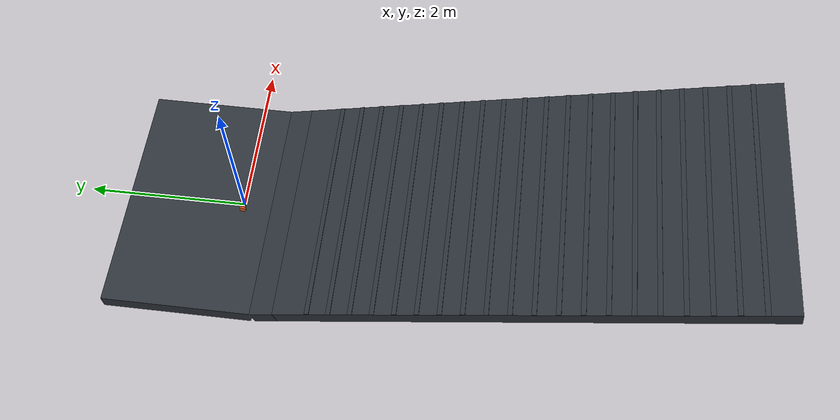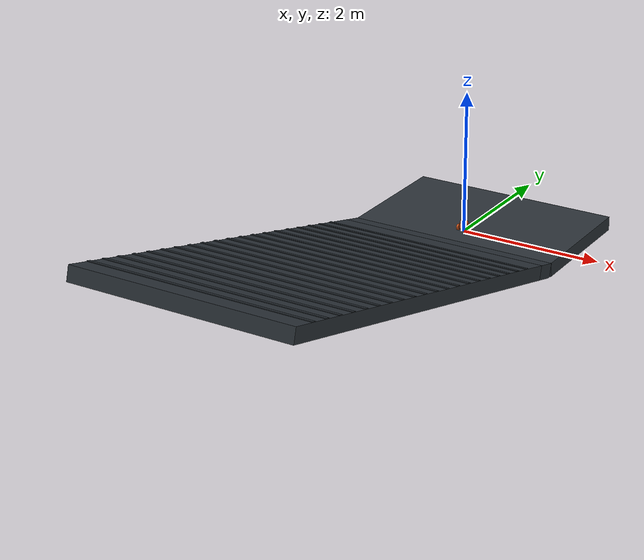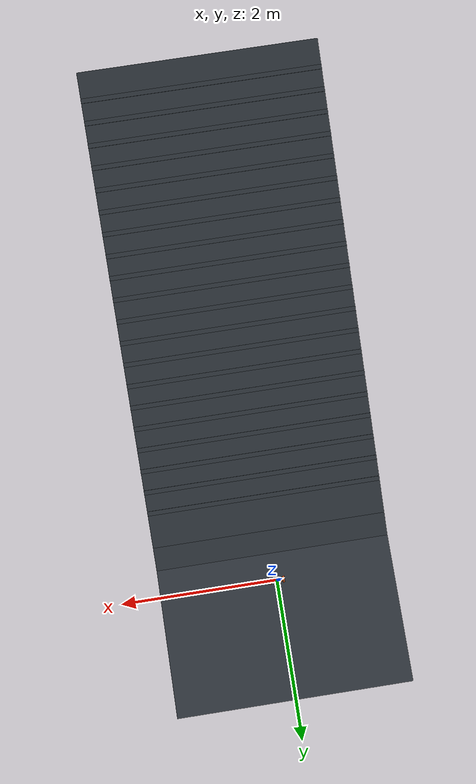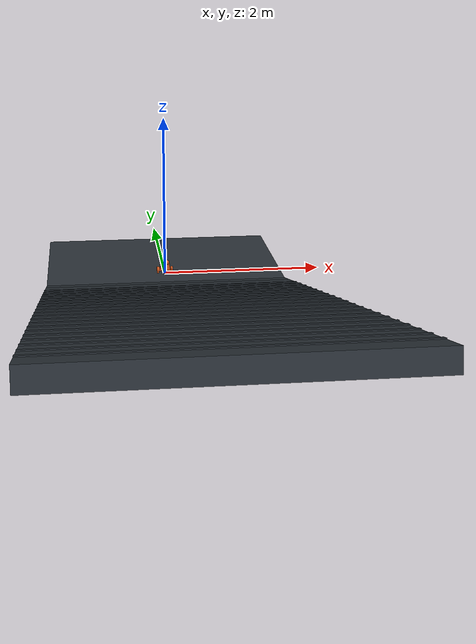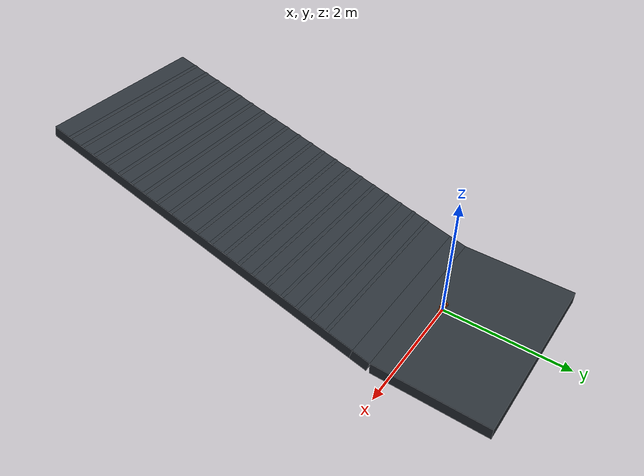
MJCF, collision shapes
<mujoco model="Stage4B rtrain_068_p15p0">
  <compiler angle="radian" meshdir="../../../../assets/upstream_local" />
  <option timestep="0.001" integrator="implicitfast" gravity="0 0 -9.81" />
  <statistic center="0 0 0.05" extent="0.28" />
  <default>
    <default class="visual">
      <geom contype="0" conaffinity="0" group="2" />
    </default>
    <default class="collision">
      <geom group="3" rgba="0.85 0.35 0.12 0.25" solref="0.005 1" solimp="0.9 0.95 0.001" />
    </default>
  </default>
  <asset>
    <texture name="ground_tex" type="2d" builtin="checker" rgb1="0.22 0.25 0.28" rgb2="0.12 0.14 0.16" width="256" height="256" />
    <material name="ground_mat" texture="ground_tex" texrepeat="4 4" reflectance="0.15" />
    <mesh name="main_frame_mesh" file="main_frame.stl" scale="0.001 0.001 0.001" />
    <mesh name="wheel_base_mesh" file="wheel_base.stl" scale="0.001 0.001 0.001" />
    <mesh name="cover_mesh" file="cover.stl" scale="0.001 0.001 0.001" />
    <mesh name="motor_left_mesh" file="motor_left.stl" scale="0.001 0.001 0.001" />
    <mesh name="motor_right_mesh" file="motor_right.stl" scale="0.001 0.001 0.001" />
    <mesh name="mc33926_mesh" file="mc33926.stl" scale="0.001 0.001 0.001" />
    <mesh name="wheel_mesh" file="wheel.stl" scale="0.001 0.001 0.001" />
    <mesh name="adapter_left_mesh" file="adapter_left.stl" scale="0.001 0.001 0.001" />
    <mesh name="adapter_right_mesh" file="adapter_right.stl" scale="0.001 0.001 0.001" />
  </asset>
  <worldbody>
    <light pos="0 -0.5 0.8" dir="0 0.6 -1" diffuse="0.8 0.8 0.8" />
    <geom name="terrain_flat" type="box" pos="0 0.575 -0.1" size="1.5 0.925 0.1" material="ground_mat" friction="0.92615725 0.005 0.0001" condim="3" />
    <geom name="terrain_transition" type="box" pos="0 -0.520770778454 -0.0577697258635" euler="-0.261799387799 0 0" size="1.5 0.15 0.1" material="ground_mat" friction="0.92615725 0.005 0.0001" condim="3" />
    <geom name="terrain_constant_grade" type="box" pos="0 -3.56343713126 0.757510266209" euler="-0.261799387799 0 0" size="1.5 3 0.1" material="ground_mat" friction="0.92615725 0.005 0.0001" condim="3" />
    <geom name="terrain_rough_00" type="box" pos="0 -1.07330453903 0.198368189845" euler="-0.261799387799 0 0" size="1.5 0.0286257252837 0.00440396757438" material="ground_mat" friction="0.92615725 0.005 0.0001" condim="3" />
    <geom name="terrain_rough_01" type="box" pos="0 -1.33782794739 0.269247023492" euler="-0.261799387799 0 0" size="1.5 0.0286257252837 0.00440396757438" material="ground_mat" friction="0.92615725 0.005 0.0001" condim="3" />
    <geom name="terrain_rough_02" type="box" pos="0 -1.60235135574 0.340125857139" euler="-0.261799387799 0 0" size="1.5 0.0286257252837 0.00440396757438" material="ground_mat" friction="0.92615725 0.005 0.0001" condim="3" />
    <geom name="terrain_rough_03" type="box" pos="0 -1.86687476409 0.411004690786" euler="-0.261799387799 0 0" size="1.5 0.0286257252837 0.00440396757438" material="ground_mat" friction="0.92615725 0.005 0.0001" condim="3" />
    <geom name="terrain_rough_04" type="box" pos="0 -2.13139817244 0.481883524432" euler="-0.261799387799 0 0" size="1.5 0.0286257252837 0.00440396757438" material="ground_mat" friction="0.92615725 0.005 0.0001" condim="3" />
    <geom name="terrain_rough_05" type="box" pos="0 -2.39592158079 0.552762358079" euler="-0.261799387799 0 0" size="1.5 0.0286257252837 0.00440396757438" material="ground_mat" friction="0.92615725 0.005 0.0001" condim="3" />
    <geom name="terrain_rough_06" type="box" pos="0 -2.66044498914 0.623641191726" euler="-0.261799387799 0 0" size="1.5 0.0286257252837 0.00440396757438" material="ground_mat" friction="0.92615725 0.005 0.0001" condim="3" />
    <geom name="terrain_rough_07" type="box" pos="0 -2.92496839749 0.694520025373" euler="-0.261799387799 0 0" size="1.5 0.0286257252837 0.00440396757438" material="ground_mat" friction="0.92615725 0.005 0.0001" condim="3" />
    <geom name="terrain_rough_08" type="box" pos="0 -3.18949180584 0.76539885902" euler="-0.261799387799 0 0" size="1.5 0.0286257252837 0.00440396757438" material="ground_mat" friction="0.92615725 0.005 0.0001" condim="3" />
    <geom name="terrain_rough_09" type="box" pos="0 -3.45401521419 0.836277692666" euler="-0.261799387799 0 0" size="1.5 0.0286257252837 0.00440396757438" material="ground_mat" friction="0.92615725 0.005 0.0001" condim="3" />
    <geom name="terrain_rough_10" type="box" pos="0 -3.71853862255 0.907156526313" euler="-0.261799387799 0 0" size="1.5 0.0286257252837 0.00440396757438" material="ground_mat" friction="0.92615725 0.005 0.0001" condim="3" />
    <geom name="terrain_rough_11" type="box" pos="0 -3.9830620309 0.97803535996" euler="-0.261799387799 0 0" size="1.5 0.0286257252837 0.00440396757438" material="ground_mat" friction="0.92615725 0.005 0.0001" condim="3" />
    <geom name="terrain_rough_12" type="box" pos="0 -4.24758543925 1.04891419361" euler="-0.261799387799 0 0" size="1.5 0.0286257252837 0.00440396757438" material="ground_mat" friction="0.92615725 0.005 0.0001" condim="3" />
    <geom name="terrain_rough_13" type="box" pos="0 -4.5121088476 1.11979302725" euler="-0.261799387799 0 0" size="1.5 0.0286257252837 0.00440396757438" material="ground_mat" friction="0.92615725 0.005 0.0001" condim="3" />
    <geom name="terrain_rough_14" type="box" pos="0 -4.77663225595 1.1906718609" euler="-0.261799387799 0 0" size="1.5 0.0286257252837 0.00440396757438" material="ground_mat" friction="0.92615725 0.005 0.0001" condim="3" />
    <geom name="terrain_rough_15" type="box" pos="0 -5.0411556643 1.26155069455" euler="-0.261799387799 0 0" size="1.5 0.0286257252837 0.00440396757438" material="ground_mat" friction="0.92615725 0.005 0.0001" condim="3" />
    <geom name="terrain_rough_16" type="box" pos="0 -5.30567907265 1.33242952819" euler="-0.261799387799 0 0" size="1.5 0.0286257252837 0.00440396757438" material="ground_mat" friction="0.92615725 0.005 0.0001" condim="3" />
    <geom name="terrain_rough_17" type="box" pos="0 -5.570202481 1.40330836184" euler="-0.261799387799 0 0" size="1.5 0.0286257252837 0.00440396757438" material="ground_mat" friction="0.92615725 0.005 0.0001" condim="3" />
    <geom name="terrain_rough_18" type="box" pos="0 -5.83472588936 1.47418719549" euler="-0.261799387799 0 0" size="1.5 0.0286257252837 0.00440396757438" material="ground_mat" friction="0.92615725 0.005 0.0001" condim="3" />
    <geom name="terrain_rough_19" type="box" pos="0 -6.09924929771 1.54506602913" euler="-0.261799387799 0 0" size="1.5 0.0286257252837 0.00440396757438" material="ground_mat" friction="0.92615725 0.005 0.0001" condim="3" />
    <body name="chassis" pos="0 0 0.043">
      <freejoint name="root" />
      <inertial pos="0.0001592717873 -0.001394466535 0.03368627387" mass="0.8173706489" fullinertia="0.0009508052638 0.001636345835 0.0009938057434 -1.163464906e-07 -4.840496598e-06 3.454944565e-05" />
      <geom name="main_frame_visual" class="visual" type="mesh" mesh="main_frame_mesh" rgba="0.12 0.42 0.72 1" />
      <geom name="wheel_base_visual" class="visual" type="mesh" mesh="wheel_base_mesh" rgba="0.95 0.50 0.10 1" />
      <geom name="cover_visual" class="visual" type="mesh" mesh="cover_mesh" rgba="0.18 0.72 0.32 0.72" />
      <geom name="motor_left_visual" class="visual" type="mesh" mesh="motor_left_mesh" rgba="0.45 0.47 0.50 1" />
      <geom name="motor_right_visual" class="visual" type="mesh" mesh="motor_right_mesh" rgba="0.45 0.47 0.50 1" />
      <geom name="mc33926_visual" class="visual" type="mesh" mesh="mc33926_mesh" rgba="0.08 0.36 0.18 1" />
      <geom name="battery_1_visual" class="visual" type="box" pos="0 -0.012 0.038" size="0.035 0.007 0.025" rgba="0.15 0.25 0.75 1" />
      <geom name="battery_2_visual" class="visual" type="box" pos="0 0.012 0.038" size="0.035 0.007 0.025" rgba="0.15 0.25 0.75 1" />
      <geom name="electronics_lump_visual" class="visual" type="box" pos="0 -0.024 0.067" size="0.035 0.006 0.0425" rgba="0.10 0.42 0.20 0.65" />
      <geom name="wheel_base_collision" class="collision" type="box" pos="0 0.0005 0.0042" size="0.074 0.0201 0.0198" />
      <geom name="lower_chassis_collision" class="collision" type="box" pos="0.001 -0.0015 0.038" size="0.0595 0.0325 0.038" />
      <geom name="upper_chassis_collision" class="collision" type="capsule" fromto="-0.024 -0.0015 0.096 0.026 -0.0015 0.096" size="0.033" />
      <site name="imu_site" type="box" pos="0 0 0.020" quat="1 0 0 0" size="0.004 0.003 0.001" rgba="1 0.15 0.05 1" />
      <body name="left_wheel" pos="-0.0885 0 0">
        <joint name="left_wheel_hinge" type="hinge" axis="1 0 0" damping="0.002" frictionloss="0.002" />
        <inertial pos="0.001407549168 -2.310217342e-08 4.024972882e-05" mass="0.1051" fullinertia="8.559060347e-05 4.760138372e-05 4.763051958e-05 2.677568832e-11 -3.525425309e-08 -1.463149106e-11" />
        <geom name="left_wheel_visual" class="visual" type="mesh" mesh="wheel_mesh" rgba="0.04 0.05 0.06 1" />
        <geom name="left_adapter_visual" class="visual" type="mesh" mesh="adapter_left_mesh" rgba="0.12 0.48 0.82 1" />
        <geom name="left_wheel_collision" class="collision" type="cylinder" size="0.042 0.012" quat="0.7071067812 0 0.7071067812 0" friction="0.92615725 0.005 0.0001" />
      </body>
      <body name="right_wheel" pos="0.0885 0 0">
        <joint name="right_wheel_hinge" type="hinge" axis="1 0 0" damping="0.002" frictionloss="0.002" />
        <inertial pos="-0.001407437868 -2.310217342e-08 -4.019113045e-05" mass="0.1051" fullinertia="8.559060397e-05 4.760141714e-05 4.763055251e-05 -2.601653908e-11 -3.526339188e-08 1.57007511e-11" />
        <geom name="right_wheel_visual" class="visual" type="mesh" mesh="wheel_mesh" rgba="0.04 0.05 0.06 1" />
        <geom name="right_adapter_visual" class="visual" type="mesh" mesh="adapter_right_mesh" rgba="0.12 0.48 0.82 1" />
        <geom name="right_wheel_collision" class="collision" type="cylinder" size="0.042 0.012" quat="0.7071067812 0 0.7071067812 0" friction="0.92615725 0.005 0.0001" />
      </body>
    </body>
  </worldbody>
  <actuator>
    <motor name="left_wheel_torque" joint="left_wheel_hinge" gear="1" ctrllimited="true" ctrlrange="-0.63 0.63" forcelimited="true" forcerange="-0.63 0.63" />
    <motor name="right_wheel_torque" joint="right_wheel_hinge" gear="1" ctrllimited="true" ctrlrange="-0.63 0.63" forcelimited="true" forcerange="-0.63 0.63" />
  </actuator>
  <sensor>
    <accelerometer name="imu_accelerometer" site="imu_site" />
    <gyro name="imu_gyro" site="imu_site" />
    <jointpos name="left_wheel_angle" joint="left_wheel_hinge" />
    <jointpos name="right_wheel_angle" joint="right_wheel_hinge" />
  </sensor>
  <keyframe>
    <key name="upright" qpos="0 0 0.043 1 0 0 0 0 0" />
  </keyframe>
</mujoco>
